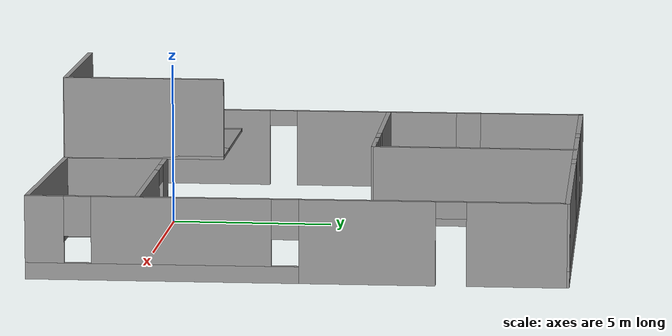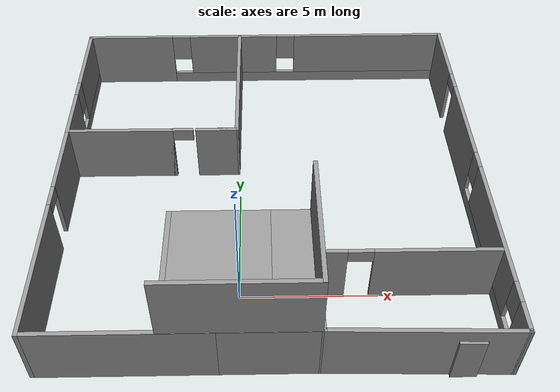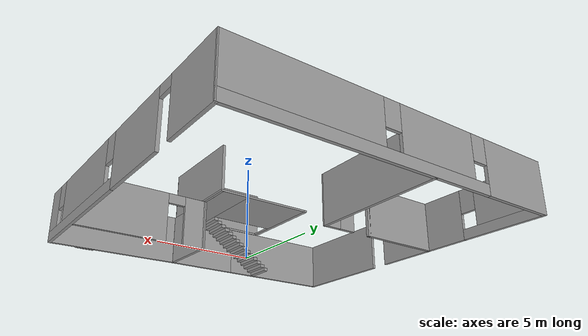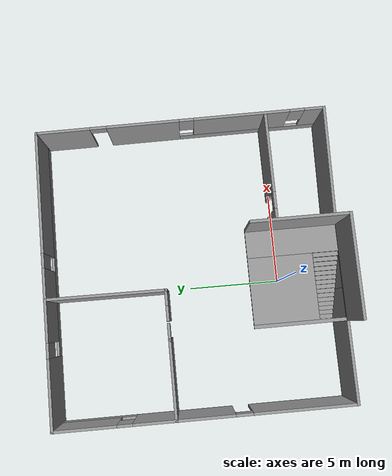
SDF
<?xml version='1.0'?>
<sdf version='1.7'>
  <model name='Untitled'>
    <pose>1.16552 4.76429 0 0 -0 0</pose>
    <link name='Door_5'>
      <collision name='Door_5_Collision'>
        <geometry>
          <box>
            <size>0.9 0.17 2</size>
          </box>
        </geometry>
        <pose>0 0 1 0 -0 0</pose>
      </collision>
      <visual name='Door_5_Visual'>
        <pose>0 0 1 0 -0 0</pose>
        <geometry>
          <box>
            <size>0.9 0.17 2</size>
          </box>
        </geometry>
        <material>
          <script>
            <uri>file://media/materials/scripts/gazebo.material</uri>
            <name>Gazebo/Grey</name>
          </script>
        </material>
      </visual>
      <pose>6.26975 -7.97272 0 0 -0 0</pose>
    </link>
    <link name='Floor_0'>
      <pose>-1.07552 -5.33923 2.5 0 -0 0</pose>
      <visual name='Floor_0_Visual_0'>
        <pose>-2.53025 0 0.05 0 -0 0</pose>
        <geometry>
          <box>
            <size>0.189494 4.97989 0.1</size>
          </box>
        </geometry>
        <material>
          <script>
            <uri>file://media/materials/scripts/gazebo.material</uri>
            <name>Gazebo/Grey</name>
          </script>
          <ambient>1 1 1 1</ambient>
        </material>
        <meta>
          <layer>1</layer>
        </meta>
      </visual>
      <collision name='Floor_0_Collision_0'>
        <geometry>
          <box>
            <size>0.189494 4.97989 0.1</size>
          </box>
        </geometry>
        <pose>-2.53025 0 0.05 0 -0 0</pose>
      </collision>
      <visual name='Floor_0_Visual_1'>
        <pose>0.094747 -2.41376 0.05 0 -0 0</pose>
        <geometry>
          <box>
            <size>5.06051 0.152364 0.1</size>
          </box>
        </geometry>
        <material>
          <script>
            <uri>file://media/materials/scripts/gazebo.material</uri>
            <name>Gazebo/Grey</name>
          </script>
          <ambient>1 1 1 1</ambient>
        </material>
        <meta>
          <layer>1</layer>
        </meta>
      </visual>
      <collision name='Floor_0_Collision_1'>
        <geometry>
          <box>
            <size>5.06051 0.152364 0.1</size>
          </box>
        </geometry>
        <pose>0.094747 -2.41376 0.05 0 -0 0</pose>
      </collision>
      <visual name='Floor_0_Visual_2'>
        <pose>1.84475 0.076182 0.05 0 -0 0</pose>
        <geometry>
          <box>
            <size>1.56051 4.82752 0.1</size>
          </box>
        </geometry>
        <material>
          <script>
            <uri>file://media/materials/scripts/gazebo.material</uri>
            <name>Gazebo/Grey</name>
          </script>
          <ambient>1 1 1 1</ambient>
        </material>
        <meta>
          <layer>1</layer>
        </meta>
      </visual>
      <collision name='Floor_0_Collision_2'>
        <geometry>
          <box>
            <size>1.56051 4.82752 0.1</size>
          </box>
        </geometry>
        <pose>1.84475 0.076182 0.05 0 -0 0</pose>
      </collision>
      <visual name='Floor_0_Visual_3'>
        <pose>-0.685506 0.768572 0.05 0 -0 0</pose>
        <geometry>
          <box>
            <size>3.5 3.44274 0.1</size>
          </box>
        </geometry>
        <material>
          <script>
            <uri>file://media/materials/scripts/gazebo.material</uri>
            <name>Gazebo/Grey</name>
          </script>
          <ambient>1 1 1 1</ambient>
        </material>
        <meta>
          <layer>1</layer>
        </meta>
      </visual>
      <collision name='Floor_0_Collision_3'>
        <geometry>
          <box>
            <size>3.5 3.44274 0.1</size>
          </box>
        </geometry>
        <pose>-0.685506 0.768572 0.05 0 -0 0</pose>
      </collision>
    </link>
    <link name='Stairs_0'>
      <visual name='Stairs_0_Visual_0'>
        <pose>-3.39436 -6.98442 0.083333 0 -0 1.5708</pose>
        <geometry>
          <box>
            <size>1.38478 0.233333 0.166667</size>
          </box>
        </geometry>
        <material>
          <script>
            <uri>file://media/materials/scripts/gazebo.material</uri>
            <name>Gazebo/Grey</name>
          </script>
          <ambient>1 1 1 1</ambient>
        </material>
        <meta>
          <layer>0</layer>
        </meta>
      </visual>
      <collision name='Stairs_0_Collision_0'>
        <geometry>
          <box>
            <size>1.38478 0.233333 0.166667</size>
          </box>
        </geometry>
        <pose>-3.39436 -6.98442 0.083333 0 -0 1.5708</pose>
      </collision>
      <visual name='Stairs_0_Visual_1'>
        <pose>-3.16103 -6.98442 0.25 0 -0 1.5708</pose>
        <geometry>
          <box>
            <size>1.38478 0.233333 0.166667</size>
          </box>
        </geometry>
        <material>
          <script>
            <uri>file://media/materials/scripts/gazebo.material</uri>
            <name>Gazebo/Grey</name>
          </script>
          <ambient>1 1 1 1</ambient>
        </material>
        <meta>
          <layer>0</layer>
        </meta>
      </visual>
      <collision name='Stairs_0_Collision_1'>
        <geometry>
          <box>
            <size>1.38478 0.233333 0.166667</size>
          </box>
        </geometry>
        <pose>-3.16103 -6.98442 0.25 0 -0 1.5708</pose>
      </collision>
      <visual name='Stairs_0_Visual_2'>
        <pose>-2.92769 -6.98442 0.416667 0 -0 1.5708</pose>
        <geometry>
          <box>
            <size>1.38478 0.233333 0.166667</size>
          </box>
        </geometry>
        <material>
          <script>
            <uri>file://media/materials/scripts/gazebo.material</uri>
            <name>Gazebo/Grey</name>
          </script>
          <ambient>1 1 1 1</ambient>
        </material>
        <meta>
          <layer>0</layer>
        </meta>
      </visual>
      <collision name='Stairs_0_Collision_2'>
        <geometry>
          <box>
            <size>1.38478 0.233333 0.166667</size>
          </box>
        </geometry>
        <pose>-2.92769 -6.98442 0.416667 0 -0 1.5708</pose>
      </collision>
      <visual name='Stairs_0_Visual_3'>
        <pose>-2.69436 -6.98442 0.583333 0 -0 1.5708</pose>
        <geometry>
          <box>
            <size>1.38478 0.233333 0.166667</size>
          </box>
        </geometry>
        <material>
          <script>
            <uri>file://media/materials/scripts/gazebo.material</uri>
            <name>Gazebo/Grey</name>
          </script>
          <ambient>1 1 1 1</ambient>
        </material>
        <meta>
          <layer>0</layer>
        </meta>
      </visual>
      <collision name='Stairs_0_Collision_3'>
        <geometry>
          <box>
            <size>1.38478 0.233333 0.166667</size>
          </box>
        </geometry>
        <pose>-2.69436 -6.98442 0.583333 0 -0 1.5708</pose>
      </collision>
      <visual name='Stairs_0_Visual_4'>
        <pose>-2.46103 -6.98442 0.75 0 -0 1.5708</pose>
        <geometry>
          <box>
            <size>1.38478 0.233333 0.166667</size>
          </box>
        </geometry>
        <material>
          <script>
            <uri>file://media/materials/scripts/gazebo.material</uri>
            <name>Gazebo/Grey</name>
          </script>
          <ambient>1 1 1 1</ambient>
        </material>
        <meta>
          <layer>0</layer>
        </meta>
      </visual>
      <collision name='Stairs_0_Collision_4'>
        <geometry>
          <box>
            <size>1.38478 0.233333 0.166667</size>
          </box>
        </geometry>
        <pose>-2.46103 -6.98442 0.75 0 -0 1.5708</pose>
      </collision>
      <visual name='Stairs_0_Visual_5'>
        <pose>-2.22769 -6.98442 0.916667 0 -0 1.5708</pose>
        <geometry>
          <box>
            <size>1.38478 0.233333 0.166667</size>
          </box>
        </geometry>
        <material>
          <script>
            <uri>file://media/materials/scripts/gazebo.material</uri>
            <name>Gazebo/Grey</name>
          </script>
          <ambient>1 1 1 1</ambient>
        </material>
        <meta>
          <layer>0</layer>
        </meta>
      </visual>
      <collision name='Stairs_0_Collision_5'>
        <geometry>
          <box>
            <size>1.38478 0.233333 0.166667</size>
          </box>
        </geometry>
        <pose>-2.22769 -6.98442 0.916667 0 -0 1.5708</pose>
      </collision>
      <visual name='Stairs_0_Visual_6'>
        <pose>-1.99436 -6.98442 1.08333 0 -0 1.5708</pose>
        <geometry>
          <box>
            <size>1.38478 0.233333 0.166667</size>
          </box>
        </geometry>
        <material>
          <script>
            <uri>file://media/materials/scripts/gazebo.material</uri>
            <name>Gazebo/Grey</name>
          </script>
          <ambient>1 1 1 1</ambient>
        </material>
        <meta>
          <layer>0</layer>
        </meta>
      </visual>
      <collision name='Stairs_0_Collision_6'>
        <geometry>
          <box>
            <size>1.38478 0.233333 0.166667</size>
          </box>
        </geometry>
        <pose>-1.99436 -6.98442 1.08333 0 -0 1.5708</pose>
      </collision>
      <visual name='Stairs_0_Visual_7'>
        <pose>-1.76103 -6.98442 1.25 0 -0 1.5708</pose>
        <geometry>
          <box>
            <size>1.38478 0.233333 0.166667</size>
          </box>
        </geometry>
        <material>
          <script>
            <uri>file://media/materials/scripts/gazebo.material</uri>
            <name>Gazebo/Grey</name>
          </script>
          <ambient>1 1 1 1</ambient>
        </material>
        <meta>
          <layer>0</layer>
        </meta>
      </visual>
      <collision name='Stairs_0_Collision_7'>
        <geometry>
          <box>
            <size>1.38478 0.233333 0.166667</size>
          </box>
        </geometry>
        <pose>-1.76103 -6.98442 1.25 0 -0 1.5708</pose>
      </collision>
      <visual name='Stairs_0_Visual_8'>
        <pose>-1.52769 -6.98442 1.41667 0 -0 1.5708</pose>
        <geometry>
          <box>
            <size>1.38478 0.233333 0.166667</size>
          </box>
        </geometry>
        <material>
          <script>
            <uri>file://media/materials/scripts/gazebo.material</uri>
            <name>Gazebo/Grey</name>
          </script>
          <ambient>1 1 1 1</ambient>
        </material>
        <meta>
          <layer>0</layer>
        </meta>
      </visual>
      <collision name='Stairs_0_Collision_8'>
        <geometry>
          <box>
            <size>1.38478 0.233333 0.166667</size>
          </box>
        </geometry>
        <pose>-1.52769 -6.98442 1.41667 0 -0 1.5708</pose>
      </collision>
      <visual name='Stairs_0_Visual_9'>
        <pose>-1.29436 -6.98442 1.58333 0 -0 1.5708</pose>
        <geometry>
          <box>
            <size>1.38478 0.233333 0.166667</size>
          </box>
        </geometry>
        <material>
          <script>
            <uri>file://media/materials/scripts/gazebo.material</uri>
            <name>Gazebo/Grey</name>
          </script>
          <ambient>1 1 1 1</ambient>
        </material>
        <meta>
          <layer>0</layer>
        </meta>
      </visual>
      <collision name='Stairs_0_Collision_9'>
        <geometry>
          <box>
            <size>1.38478 0.233333 0.166667</size>
          </box>
        </geometry>
        <pose>-1.29436 -6.98442 1.58333 0 -0 1.5708</pose>
      </collision>
      <visual name='Stairs_0_Visual_10'>
        <pose>-1.06103 -6.98442 1.75 0 -0 1.5708</pose>
        <geometry>
          <box>
            <size>1.38478 0.233333 0.166667</size>
          </box>
        </geometry>
        <material>
          <script>
            <uri>file://media/materials/scripts/gazebo.material</uri>
            <name>Gazebo/Grey</name>
          </script>
          <ambient>1 1 1 1</ambient>
        </material>
        <meta>
          <layer>0</layer>
        </meta>
      </visual>
      <collision name='Stairs_0_Collision_10'>
        <geometry>
          <box>
            <size>1.38478 0.233333 0.166667</size>
          </box>
        </geometry>
        <pose>-1.06103 -6.98442 1.75 0 -0 1.5708</pose>
      </collision>
      <visual name='Stairs_0_Visual_11'>
        <pose>-0.827693 -6.98442 1.91667 0 -0 1.5708</pose>
        <geometry>
          <box>
            <size>1.38478 0.233333 0.166667</size>
          </box>
        </geometry>
        <material>
          <script>
            <uri>file://media/materials/scripts/gazebo.material</uri>
            <name>Gazebo/Grey</name>
          </script>
          <ambient>1 1 1 1</ambient>
        </material>
        <meta>
          <layer>0</layer>
        </meta>
      </visual>
      <collision name='Stairs_0_Collision_11'>
        <geometry>
          <box>
            <size>1.38478 0.233333 0.166667</size>
          </box>
        </geometry>
        <pose>-0.827693 -6.98442 1.91667 0 -0 1.5708</pose>
      </collision>
      <visual name='Stairs_0_Visual_12'>
        <pose>-0.594359 -6.98442 2.08333 0 -0 1.5708</pose>
        <geometry>
          <box>
            <size>1.38478 0.233333 0.166667</size>
          </box>
        </geometry>
        <material>
          <script>
            <uri>file://media/materials/scripts/gazebo.material</uri>
            <name>Gazebo/Grey</name>
          </script>
          <ambient>1 1 1 1</ambient>
        </material>
        <meta>
          <layer>0</layer>
        </meta>
      </visual>
      <collision name='Stairs_0_Collision_12'>
        <geometry>
          <box>
            <size>1.38478 0.233333 0.166667</size>
          </box>
        </geometry>
        <pose>-0.594359 -6.98442 2.08333 0 -0 1.5708</pose>
      </collision>
      <visual name='Stairs_0_Visual_13'>
        <pose>-0.361026 -6.98442 2.25 0 -0 1.5708</pose>
        <geometry>
          <box>
            <size>1.38478 0.233333 0.166667</size>
          </box>
        </geometry>
        <material>
          <script>
            <uri>file://media/materials/scripts/gazebo.material</uri>
            <name>Gazebo/Grey</name>
          </script>
          <ambient>1 1 1 1</ambient>
        </material>
        <meta>
          <layer>0</layer>
        </meta>
      </visual>
      <collision name='Stairs_0_Collision_13'>
        <geometry>
          <box>
            <size>1.38478 0.233333 0.166667</size>
          </box>
        </geometry>
        <pose>-0.361026 -6.98442 2.25 0 -0 1.5708</pose>
      </collision>
      <visual name='Stairs_0_Visual_14'>
        <pose>-0.127693 -6.98442 2.41667 0 -0 1.5708</pose>
        <geometry>
          <box>
            <size>1.38478 0.233333 0.166667</size>
          </box>
        </geometry>
        <material>
          <script>
            <uri>file://media/materials/scripts/gazebo.material</uri>
            <name>Gazebo/Grey</name>
          </script>
          <ambient>1 1 1 1</ambient>
        </material>
        <meta>
          <layer>0</layer>
        </meta>
      </visual>
      <collision name='Stairs_0_Collision_14'>
        <geometry>
          <box>
            <size>1.38478 0.233333 0.166667</size>
          </box>
        </geometry>
        <pose>-0.127693 -6.98442 2.41667 0 -0 1.5708</pose>
      </collision>
    </link>
    <link name='Wall_0'>
      <collision name='Wall_0_Collision'>
        <geometry>
          <box>
            <size>3.60057 0.15 2.5</size>
          </box>
        </geometry>
        <pose>0 0 1.25 0 -0 0</pose>
      </collision>
      <visual name='Wall_0_Visual'>
        <pose>0 0 1.25 0 -0 0</pose>
        <geometry>
          <box>
            <size>3.60057 0.15 2.5</size>
          </box>
        </geometry>
        <material>
          <script>
            <uri>file://media/materials/scripts/gazebo.material</uri>
            <name>Gazebo/Grey</name>
          </script>
          <ambient>1 1 1 1</ambient>
        </material>
        <meta>
          <layer>0</layer>
        </meta>
      </visual>
      <pose>-0.150236 -7.77429 0 0 -0 0</pose>
    </link>
    <link name='Wall_1'>
      <collision name='Wall_1_Collision'>
        <geometry>
          <box>
            <size>3.25104 0.15 2.5</size>
          </box>
        </geometry>
        <pose>0 0 1.25 0 -0 0</pose>
      </collision>
      <visual name='Wall_1_Visual'>
        <pose>0 0 1.25 0 -0 0</pose>
        <geometry>
          <box>
            <size>3.25104 0.15 2.5</size>
          </box>
        </geometry>
        <material>
          <script>
            <uri>file://media/materials/scripts/gazebo.material</uri>
            <name>Gazebo/Grey</name>
          </script>
          <ambient>1 1 1 1</ambient>
        </material>
        <meta>
          <layer>0</layer>
        </meta>
      </visual>
      <pose>1.52476 -6.22429 0 0 -0 1.60323</pose>
    </link>
    <link name='Wall_10'>
      <pose>-0.05052 7.92571 0 0 -0 0</pose>
      <visual name='Wall_10_Visual_0'>
        <pose>-6.11556 0 1.25 0 -0 0</pose>
        <geometry>
          <box>
            <size>3.76887 0.15 2.5</size>
          </box>
        </geometry>
        <material>
          <script>
            <uri>file://media/materials/scripts/gazebo.material</uri>
            <name>Gazebo/Grey</name>
          </script>
          <ambient>1 1 1 1</ambient>
        </material>
        <meta>
          <layer>0</layer>
        </meta>
      </visual>
      <collision name='Wall_10_Collision_0'>
        <geometry>
          <box>
            <size>3.76887 0.15 2.5</size>
          </box>
        </geometry>
        <pose>-6.11556 0 1.25 0 -0 0</pose>
      </collision>
      <visual name='Wall_10_Visual_1'>
        <pose>1.88444 0 0.25 0 -0 0</pose>
        <geometry>
          <box>
            <size>12.2311 0.15 0.5</size>
          </box>
        </geometry>
        <material>
          <script>
            <uri>file://media/materials/scripts/gazebo.material</uri>
            <name>Gazebo/Grey</name>
          </script>
          <ambient>1 1 1 1</ambient>
        </material>
        <meta>
          <layer>0</layer>
        </meta>
      </visual>
      <collision name='Wall_10_Collision_1'>
        <geometry>
          <box>
            <size>12.2311 0.15 0.5</size>
          </box>
        </geometry>
        <pose>1.88444 0 0.25 0 -0 0</pose>
      </collision>
      <visual name='Wall_10_Visual_2'>
        <pose>-1.46448 0 1.5 0 -0 0</pose>
        <geometry>
          <box>
            <size>3.9333 0.15 2</size>
          </box>
        </geometry>
        <material>
          <script>
            <uri>file://media/materials/scripts/gazebo.material</uri>
            <name>Gazebo/Grey</name>
          </script>
          <ambient>1 1 1 1</ambient>
        </material>
        <meta>
          <layer>0</layer>
        </meta>
      </visual>
      <collision name='Wall_10_Collision_2'>
        <geometry>
          <box>
            <size>3.9333 0.15 2</size>
          </box>
        </geometry>
        <pose>-1.46448 0 1.5 0 -0 0</pose>
      </collision>
      <visual name='Wall_10_Visual_3'>
        <pose>4.65109 0 1.5 0 -0 0</pose>
        <geometry>
          <box>
            <size>6.69782 0.15 2</size>
          </box>
        </geometry>
        <material>
          <script>
            <uri>file://media/materials/scripts/gazebo.material</uri>
            <name>Gazebo/Grey</name>
          </script>
          <ambient>1 1 1 1</ambient>
        </material>
        <meta>
          <layer>0</layer>
        </meta>
      </visual>
      <collision name='Wall_10_Collision_3'>
        <geometry>
          <box>
            <size>6.69782 0.15 2</size>
          </box>
        </geometry>
        <pose>4.65109 0 1.5 0 -0 0</pose>
      </collision>
      <visual name='Wall_10_Visual_4'>
        <pose>-3.83113 0 1.9 0 -0 0</pose>
        <geometry>
          <box>
            <size>0.8 0.15 1.2</size>
          </box>
        </geometry>
        <material>
          <script>
            <uri>file://media/materials/scripts/gazebo.material</uri>
            <name>Gazebo/Grey</name>
          </script>
          <ambient>1 1 1 1</ambient>
        </material>
        <meta>
          <layer>0</layer>
        </meta>
      </visual>
      <collision name='Wall_10_Collision_4'>
        <geometry>
          <box>
            <size>0.8 0.15 1.2</size>
          </box>
        </geometry>
        <pose>-3.83113 0 1.9 0 -0 0</pose>
      </collision>
      <visual name='Wall_10_Visual_5'>
        <pose>0.902176 0 1.9 0 -0 0</pose>
        <geometry>
          <box>
            <size>0.8 0.15 1.2</size>
          </box>
        </geometry>
        <material>
          <script>
            <uri>file://media/materials/scripts/gazebo.material</uri>
            <name>Gazebo/Grey</name>
          </script>
          <ambient>1 1 1 1</ambient>
        </material>
        <meta>
          <layer>0</layer>
        </meta>
      </visual>
      <collision name='Wall_10_Collision_5'>
        <geometry>
          <box>
            <size>0.8 0.15 1.2</size>
          </box>
        </geometry>
        <pose>0.902176 0 1.9 0 -0 0</pose>
      </collision>
    </link>
    <link name='Wall_11'>
      <pose>7.92476 0.000711 0 0 -0 -1.56445</pose>
      <visual name='Wall_11_Visual_0'>
        <pose>-6.49487 0 1.25 0 -0 0</pose>
        <geometry>
          <box>
            <size>3.01026 0.15 2.5</size>
          </box>
        </geometry>
        <material>
          <script>
            <uri>file://media/materials/scripts/gazebo.material</uri>
            <name>Gazebo/Grey</name>
          </script>
          <ambient>1 1 1 1</ambient>
        </material>
        <meta>
          <layer>0</layer>
        </meta>
      </visual>
      <collision name='Wall_11_Collision_0'>
        <geometry>
          <box>
            <size>3.01026 0.15 2.5</size>
          </box>
        </geometry>
        <pose>-6.49487 0 1.25 0 -0 0</pose>
      </collision>
      <visual name='Wall_11_Visual_1'>
        <pose>-2.08694 0 1.25 0 -0 0</pose>
        <geometry>
          <box>
            <size>4.0056 0.15 2.5</size>
          </box>
        </geometry>
        <material>
          <script>
            <uri>file://media/materials/scripts/gazebo.material</uri>
            <name>Gazebo/Grey</name>
          </script>
          <ambient>1 1 1 1</ambient>
        </material>
        <meta>
          <layer>0</layer>
        </meta>
      </visual>
      <collision name='Wall_11_Collision_1'>
        <geometry>
          <box>
            <size>4.0056 0.15 2.5</size>
          </box>
        </geometry>
        <pose>-2.08694 0 1.25 0 -0 0</pose>
      </collision>
      <visual name='Wall_11_Visual_2'>
        <pose>3.95793 0 0.25 0 -0 0</pose>
        <geometry>
          <box>
            <size>8.08414 0.15 0.5</size>
          </box>
        </geometry>
        <material>
          <script>
            <uri>file://media/materials/scripts/gazebo.material</uri>
            <name>Gazebo/Grey</name>
          </script>
          <ambient>1 1 1 1</ambient>
        </material>
        <meta>
          <layer>0</layer>
        </meta>
      </visual>
      <collision name='Wall_11_Collision_2'>
        <geometry>
          <box>
            <size>8.08414 0.15 0.5</size>
          </box>
        </geometry>
        <pose>3.95793 0 0.25 0 -0 0</pose>
      </collision>
      <visual name='Wall_11_Visual_3'>
        <pose>3.37607 0 1.5 0 -0 0</pose>
        <geometry>
          <box>
            <size>5.32041 0.15 2</size>
          </box>
        </geometry>
        <material>
          <script>
            <uri>file://media/materials/scripts/gazebo.material</uri>
            <name>Gazebo/Grey</name>
          </script>
          <ambient>1 1 1 1</ambient>
        </material>
        <meta>
          <layer>0</layer>
        </meta>
      </visual>
      <collision name='Wall_11_Collision_3'>
        <geometry>
          <box>
            <size>5.32041 0.15 2</size>
          </box>
        </geometry>
        <pose>3.37607 0 1.5 0 -0 0</pose>
      </collision>
      <visual name='Wall_11_Visual_4'>
        <pose>7.41814 0 1.5 0 -0 0</pose>
        <geometry>
          <box>
            <size>1.16373 0.15 2</size>
          </box>
        </geometry>
        <material>
          <script>
            <uri>file://media/materials/scripts/gazebo.material</uri>
            <name>Gazebo/Grey</name>
          </script>
          <ambient>1 1 1 1</ambient>
        </material>
        <meta>
          <layer>0</layer>
        </meta>
      </visual>
      <collision name='Wall_11_Collision_4'>
        <geometry>
          <box>
            <size>1.16373 0.15 2</size>
          </box>
        </geometry>
        <pose>7.41814 0 1.5 0 -0 0</pose>
      </collision>
      <visual name='Wall_11_Visual_5'>
        <pose>0.315862 0 1.9 0 -0 0</pose>
        <geometry>
          <box>
            <size>0.8 0.15 1.2</size>
          </box>
        </geometry>
        <material>
          <script>
            <uri>file://media/materials/scripts/gazebo.material</uri>
            <name>Gazebo/Grey</name>
          </script>
          <ambient>1 1 1 1</ambient>
        </material>
        <meta>
          <layer>0</layer>
        </meta>
      </visual>
      <collision name='Wall_11_Collision_5'>
        <geometry>
          <box>
            <size>0.8 0.15 1.2</size>
          </box>
        </geometry>
        <pose>0.315862 0 1.9 0 -0 0</pose>
      </collision>
      <visual name='Wall_11_Visual_6'>
        <pose>6.43627 0 1.9 0 -0 0</pose>
        <geometry>
          <box>
            <size>0.8 0.15 1.2</size>
          </box>
        </geometry>
        <material>
          <script>
            <uri>file://media/materials/scripts/gazebo.material</uri>
            <name>Gazebo/Grey</name>
          </script>
          <ambient>1 1 1 1</ambient>
        </material>
        <meta>
          <layer>0</layer>
        </meta>
      </visual>
      <collision name='Wall_11_Collision_6'>
        <geometry>
          <box>
            <size>0.8 0.15 1.2</size>
          </box>
        </geometry>
        <pose>6.43627 0 1.9 0 -0 0</pose>
      </collision>
      <visual name='Wall_11_Visual_7'>
        <pose>-4.53974 0 2.25 0 -0 0</pose>
        <geometry>
          <box>
            <size>0.9 0.15 0.5</size>
          </box>
        </geometry>
        <material>
          <script>
            <uri>file://media/materials/scripts/gazebo.material</uri>
            <name>Gazebo/Grey</name>
          </script>
          <ambient>1 1 1 1</ambient>
        </material>
        <meta>
          <layer>0</layer>
        </meta>
      </visual>
      <collision name='Wall_11_Collision_7'>
        <geometry>
          <box>
            <size>0.9 0.15 0.5</size>
          </box>
        </geometry>
        <pose>-4.53974 0 2.25 0 -0 0</pose>
      </collision>
    </link>
    <link name='Wall_12'>
      <collision name='Wall_12_Collision'>
        <geometry>
          <box>
            <size>6.55176 0.15 2.5</size>
          </box>
        </geometry>
        <pose>0 0 1.25 0 -0 0</pose>
      </collision>
      <visual name='Wall_12_Visual'>
        <pose>0 0 1.25 0 -0 0</pose>
        <geometry>
          <box>
            <size>6.55176 0.15 2.5</size>
          </box>
        </geometry>
        <material>
          <script>
            <uri>file://media/materials/scripts/gazebo.material</uri>
            <name>Gazebo/Grey</name>
          </script>
          <ambient>1 1 1 1</ambient>
        </material>
        <meta>
          <layer>0</layer>
        </meta>
      </visual>
      <pose>4.75493 -7.84929 0 0 -0 3.11816</pose>
    </link>
    <link name='Wall_14'>
      <collision name='Wall_14_Collision'>
        <geometry>
          <box>
            <size>4.25 0.15 2.5</size>
          </box>
        </geometry>
        <pose>0 0 1.25 0 -0 0</pose>
      </collision>
      <visual name='Wall_14_Visual'>
        <pose>0 0 1.25 0 -0 0</pose>
        <geometry>
          <box>
            <size>4.25 0.15 2.5</size>
          </box>
        </geometry>
        <material>
          <script>
            <uri>file://media/materials/scripts/gazebo.material</uri>
            <name>Gazebo/Grey</name>
          </script>
          <ambient>1 1 1 1</ambient>
        </material>
        <meta>
          <layer>0</layer>
        </meta>
      </visual>
      <pose>-5.92552 1.57571 0 0 -0 0</pose>
    </link>
    <link name='Wall_15'>
      <pose>-2.57552 1.57571 0 0 -0 0</pose>
      <visual name='Wall_15_Visual_0'>
        <pose>-1.30408 0 1.25 0 -0 0</pose>
        <geometry>
          <box>
            <size>0.141842 0.15 2.5</size>
          </box>
        </geometry>
        <material>
          <script>
            <uri>file://media/materials/scripts/gazebo.material</uri>
            <name>Gazebo/Grey</name>
          </script>
          <ambient>1 1 1 1</ambient>
        </material>
        <meta>
          <layer>0</layer>
        </meta>
      </visual>
      <collision name='Wall_15_Collision_0'>
        <geometry>
          <box>
            <size>0.141842 0.15 2.5</size>
          </box>
        </geometry>
        <pose>-1.30408 0 1.25 0 -0 0</pose>
      </collision>
      <visual name='Wall_15_Visual_1'>
        <pose>0.520921 0 1.25 0 -0 0</pose>
        <geometry>
          <box>
            <size>1.70816 0.15 2.5</size>
          </box>
        </geometry>
        <material>
          <script>
            <uri>file://media/materials/scripts/gazebo.material</uri>
            <name>Gazebo/Grey</name>
          </script>
          <ambient>1 1 1 1</ambient>
        </material>
        <meta>
          <layer>0</layer>
        </meta>
      </visual>
      <collision name='Wall_15_Collision_1'>
        <geometry>
          <box>
            <size>1.70816 0.15 2.5</size>
          </box>
        </geometry>
        <pose>0.520921 0 1.25 0 -0 0</pose>
      </collision>
      <visual name='Wall_15_Visual_2'>
        <pose>0.925477 0 1.25 0 -0 0</pose>
        <geometry>
          <box>
            <size>0.899047 0.15 2.5</size>
          </box>
        </geometry>
        <material>
          <script>
            <uri>file://media/materials/scripts/gazebo.material</uri>
            <name>Gazebo/Grey</name>
          </script>
          <ambient>1 1 1 1</ambient>
        </material>
        <meta>
          <layer>0</layer>
        </meta>
      </visual>
      <collision name='Wall_15_Collision_2'>
        <geometry>
          <box>
            <size>0.899047 0.15 2.5</size>
          </box>
        </geometry>
        <pose>0.925477 0 1.25 0 -0 0</pose>
      </collision>
      <visual name='Wall_15_Visual_3'>
        <pose>-0.828603 0 2.25 0 -0 0</pose>
        <geometry>
          <box>
            <size>0.809112 0.15 0.5</size>
          </box>
        </geometry>
        <material>
          <script>
            <uri>file://media/materials/scripts/gazebo.material</uri>
            <name>Gazebo/Grey</name>
          </script>
          <ambient>1 1 1 1</ambient>
        </material>
        <meta>
          <layer>0</layer>
        </meta>
      </visual>
      <collision name='Wall_15_Collision_3'>
        <geometry>
          <box>
            <size>0.809112 0.15 0.5</size>
          </box>
        </geometry>
        <pose>-0.828603 0 2.25 0 -0 0</pose>
      </collision>
    </link>
    <link name='Wall_16'>
      <collision name='Wall_16_Collision'>
        <geometry>
          <box>
            <size>6.45365 0.15 2.5</size>
          </box>
        </geometry>
        <pose>0 0 1.25 0 -0 0</pose>
      </collision>
      <visual name='Wall_16_Visual'>
        <pose>0 0 1.25 0 -0 0</pose>
        <geometry>
          <box>
            <size>6.45365 0.15 2.5</size>
          </box>
        </geometry>
        <material>
          <script>
            <uri>file://media/materials/scripts/gazebo.material</uri>
            <name>Gazebo/Grey</name>
          </script>
          <ambient>1 1 1 1</ambient>
        </material>
        <meta>
          <layer>0</layer>
        </meta>
      </visual>
      <pose>-1.25226 4.72745 0 0 -0 1.56342</pose>
    </link>
    <link name='Wall_18'>
      <pose>4.64948 -4.67429 0 0 -0 0</pose>
      <visual name='Wall_18_Visual_0'>
        <pose>-2.65809 0 1.25 0 -0 0</pose>
        <geometry>
          <box>
            <size>1.18382 0.15 2.5</size>
          </box>
        </geometry>
        <material>
          <script>
            <uri>file://media/materials/scripts/gazebo.material</uri>
            <name>Gazebo/Grey</name>
          </script>
          <ambient>1 1 1 1</ambient>
        </material>
        <meta>
          <layer>0</layer>
        </meta>
      </visual>
      <collision name='Wall_18_Collision_0'>
        <geometry>
          <box>
            <size>1.18382 0.15 2.5</size>
          </box>
        </geometry>
        <pose>-2.65809 0 1.25 0 -0 0</pose>
      </collision>
      <visual name='Wall_18_Visual_1'>
        <pose>1.04191 0 1.25 0 -0 0</pose>
        <geometry>
          <box>
            <size>4.41618 0.15 2.5</size>
          </box>
        </geometry>
        <material>
          <script>
            <uri>file://media/materials/scripts/gazebo.material</uri>
            <name>Gazebo/Grey</name>
          </script>
          <ambient>1 1 1 1</ambient>
        </material>
        <meta>
          <layer>0</layer>
        </meta>
      </visual>
      <collision name='Wall_18_Collision_1'>
        <geometry>
          <box>
            <size>4.41618 0.15 2.5</size>
          </box>
        </geometry>
        <pose>1.04191 0 1.25 0 -0 0</pose>
      </collision>
      <visual name='Wall_18_Visual_2'>
        <pose>-1.61618 0 2.25 0 -0 0</pose>
        <geometry>
          <box>
            <size>0.9 0.15 0.5</size>
          </box>
        </geometry>
        <material>
          <script>
            <uri>file://media/materials/scripts/gazebo.material</uri>
            <name>Gazebo/Grey</name>
          </script>
          <ambient>1 1 1 1</ambient>
        </material>
        <meta>
          <layer>0</layer>
        </meta>
      </visual>
      <collision name='Wall_18_Collision_2'>
        <geometry>
          <box>
            <size>0.9 0.15 0.5</size>
          </box>
        </geometry>
        <pose>-1.61618 0 2.25 0 -0 0</pose>
      </collision>
    </link>
    <link name='Wall_4'>
      <collision name='Wall_4_Collision'>
        <geometry>
          <box>
            <size>5.25 0.15 2.5</size>
          </box>
        </geometry>
        <pose>0 0 1.25 0 -0 0</pose>
      </collision>
      <visual name='Wall_4_Visual'>
        <pose>0 0 1.25 0 -0 0</pose>
        <geometry>
          <box>
            <size>5.25 0.15 2.5</size>
          </box>
        </geometry>
        <material>
          <script>
            <uri>file://media/materials/scripts/gazebo.material</uri>
            <name>Gazebo/Grey</name>
          </script>
          <ambient>1 1 1 1</ambient>
        </material>
        <meta>
          <layer>1</layer>
        </meta>
      </visual>
      <pose>-1.07552 -7.75418 2.5 0 -0 0</pose>
    </link>
    <link name='Wall_5'>
      <collision name='Wall_5_Collision'>
        <geometry>
          <box>
            <size>4.95977 0.15 2.5</size>
          </box>
        </geometry>
        <pose>0 0 1.25 0 -0 0</pose>
      </collision>
      <visual name='Wall_5_Visual'>
        <pose>0 0 1.25 0 -0 0</pose>
        <geometry>
          <box>
            <size>4.95977 0.15 2.5</size>
          </box>
        </geometry>
        <material>
          <script>
            <uri>file://media/materials/scripts/gazebo.material</uri>
            <name>Gazebo/Grey</name>
          </script>
          <ambient>1 1 1 1</ambient>
        </material>
        <meta>
          <layer>1</layer>
        </meta>
      </visual>
      <pose>1.47448 -5.32918 2.5 0 -0 1.5708</pose>
    </link>
    <link name='Wall_7'>
      <collision name='Wall_7_Collision'>
        <geometry>
          <box>
            <size>6.25 0.15 2.5</size>
          </box>
        </geometry>
        <pose>0 0 1.25 0 -0 0</pose>
      </collision>
      <visual name='Wall_7_Visual'>
        <pose>0 0 1.25 0 -0 0</pose>
        <geometry>
          <box>
            <size>6.25 0.15 2.5</size>
          </box>
        </geometry>
        <material>
          <script>
            <uri>file://media/materials/scripts/gazebo.material</uri>
            <name>Gazebo/Grey</name>
          </script>
          <ambient>1 1 1 1</ambient>
        </material>
        <meta>
          <layer>0</layer>
        </meta>
      </visual>
      <pose>-4.92552 -7.77429 0 0 -0 3.14159</pose>
    </link>
    <link name='Wall_8'>
      <pose>-7.97552 -3.09929 0 0 -0 1.5708</pose>
      <visual name='Wall_8_Visual_0'>
        <pose>-2.01664 0 1.25 0 -0 0</pose>
        <geometry>
          <box>
            <size>5.46672 0.15 2.5</size>
          </box>
        </geometry>
        <material>
          <script>
            <uri>file://media/materials/scripts/gazebo.material</uri>
            <name>Gazebo/Grey</name>
          </script>
          <ambient>1 1 1 1</ambient>
        </material>
        <meta>
          <layer>0</layer>
        </meta>
      </visual>
      <collision name='Wall_8_Collision_0'>
        <geometry>
          <box>
            <size>5.46672 0.15 2.5</size>
          </box>
        </geometry>
        <pose>-2.01664 0 1.25 0 -0 0</pose>
      </collision>
      <visual name='Wall_8_Visual_1'>
        <pose>3.18336 0 1.25 0 -0 0</pose>
        <geometry>
          <box>
            <size>3.13328 0.15 2.5</size>
          </box>
        </geometry>
        <material>
          <script>
            <uri>file://media/materials/scripts/gazebo.material</uri>
            <name>Gazebo/Grey</name>
          </script>
          <ambient>1 1 1 1</ambient>
        </material>
        <meta>
          <layer>0</layer>
        </meta>
      </visual>
      <collision name='Wall_8_Collision_1'>
        <geometry>
          <box>
            <size>3.13328 0.15 2.5</size>
          </box>
        </geometry>
        <pose>3.18336 0 1.25 0 -0 0</pose>
      </collision>
      <visual name='Wall_8_Visual_2'>
        <pose>1.16672 0 2.25 0 -0 0</pose>
        <geometry>
          <box>
            <size>0.9 0.15 0.5</size>
          </box>
        </geometry>
        <material>
          <script>
            <uri>file://media/materials/scripts/gazebo.material</uri>
            <name>Gazebo/Grey</name>
          </script>
          <ambient>1 1 1 1</ambient>
        </material>
        <meta>
          <layer>0</layer>
        </meta>
      </visual>
      <collision name='Wall_8_Collision_2'>
        <geometry>
          <box>
            <size>0.9 0.15 0.5</size>
          </box>
        </geometry>
        <pose>1.16672 0 2.25 0 -0 0</pose>
      </collision>
    </link>
    <link name='Wall_9'>
      <pose>-7.97552 4.75071 0 0 -0 1.5708</pose>
      <visual name='Wall_9_Visual_0'>
        <pose>-2.09202 0 1.25 0 -0 0</pose>
        <geometry>
          <box>
            <size>2.31597 0.15 2.5</size>
          </box>
        </geometry>
        <material>
          <script>
            <uri>file://media/materials/scripts/gazebo.material</uri>
            <name>Gazebo/Grey</name>
          </script>
          <ambient>1 1 1 1</ambient>
        </material>
        <meta>
          <layer>0</layer>
        </meta>
      </visual>
      <collision name='Wall_9_Collision_0'>
        <geometry>
          <box>
            <size>2.31597 0.15 2.5</size>
          </box>
        </geometry>
        <pose>-2.09202 0 1.25 0 -0 0</pose>
      </collision>
      <visual name='Wall_9_Visual_1'>
        <pose>1.15798 0 0.25 0 -0 0</pose>
        <geometry>
          <box>
            <size>4.18403 0.15 0.5</size>
          </box>
        </geometry>
        <material>
          <script>
            <uri>file://media/materials/scripts/gazebo.material</uri>
            <name>Gazebo/Grey</name>
          </script>
          <ambient>1 1 1 1</ambient>
        </material>
        <meta>
          <layer>0</layer>
        </meta>
      </visual>
      <collision name='Wall_9_Collision_1'>
        <geometry>
          <box>
            <size>4.18403 0.15 0.5</size>
          </box>
        </geometry>
        <pose>1.15798 0 0.25 0 -0 0</pose>
      </collision>
      <visual name='Wall_9_Visual_2'>
        <pose>1.55798 0 1.5 0 -0 0</pose>
        <geometry>
          <box>
            <size>3.38403 0.15 2</size>
          </box>
        </geometry>
        <material>
          <script>
            <uri>file://media/materials/scripts/gazebo.material</uri>
            <name>Gazebo/Grey</name>
          </script>
          <ambient>1 1 1 1</ambient>
        </material>
        <meta>
          <layer>0</layer>
        </meta>
      </visual>
      <collision name='Wall_9_Collision_2'>
        <geometry>
          <box>
            <size>3.38403 0.15 2</size>
          </box>
        </geometry>
        <pose>1.55798 0 1.5 0 -0 0</pose>
      </collision>
      <visual name='Wall_9_Visual_3'>
        <pose>-0.534033 0 1.9 0 -0 0</pose>
        <geometry>
          <box>
            <size>0.8 0.15 1.2</size>
          </box>
        </geometry>
        <material>
          <script>
            <uri>file://media/materials/scripts/gazebo.material</uri>
            <name>Gazebo/Grey</name>
          </script>
          <ambient>1 1 1 1</ambient>
        </material>
        <meta>
          <layer>0</layer>
        </meta>
      </visual>
      <collision name='Wall_9_Collision_3'>
        <geometry>
          <box>
            <size>0.8 0.15 1.2</size>
          </box>
        </geometry>
        <pose>-0.534033 0 1.9 0 -0 0</pose>
      </collision>
    </link>
    <static>1</static>
  </model>
</sdf>
